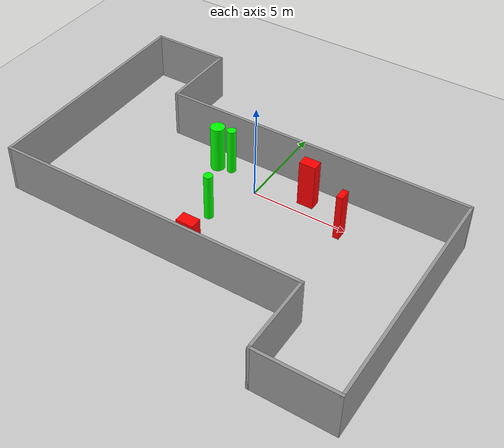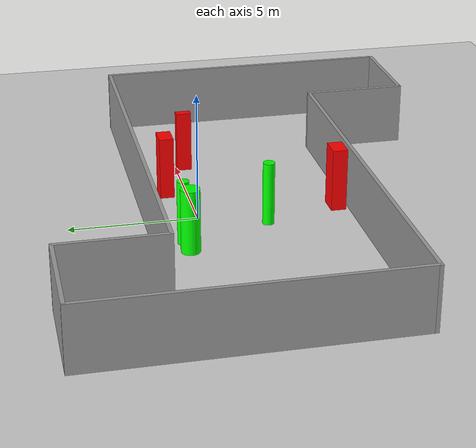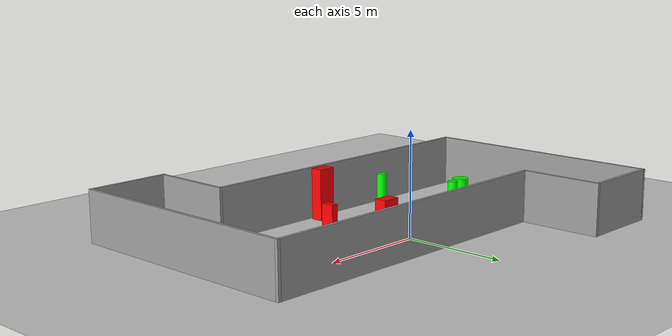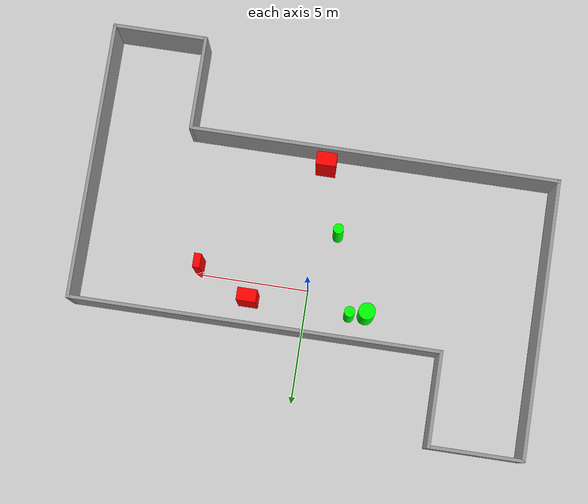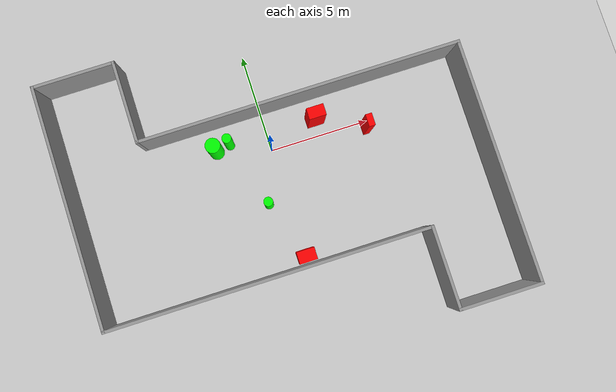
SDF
<sdf version="1.7">
 <world name="default">
  <light name="sun" type="directional">
   <pose>0 0 10 0 -0 0</pose>
   <diffuse>0.8 0.8 0.8 1</diffuse>
   <specular>0.2 0.2 0.2 1</specular>
   <attenuation>
    <range>1000</range>
    <constant>0.9</constant>
    <linear>0.01</linear>
    <quadratic>0.001</quadratic>
   </attenuation>
   <direction>-0.5 0.1 -0.9</direction>
   <spot><inner_angle>0</inner_angle><outer_angle>0</outer_angle><falloff>0</falloff></spot>
  </light>
  <model name="ground_plane">
   <static>1</static>
   <link name="link">
    <collision name="collision">
     <geometry><plane><normal>0 0 1</normal><size>100 100</size></plane></geometry>
     <surface>
      <contact><collide_bitmask>65535</collide_bitmask></contact>
      <friction><ode><mu>100</mu><mu2>50</mu2></ode></friction>
     </surface>
    </collision>
    <visual name="visual">
     <cast_shadows>0</cast_shadows>
     <geometry><plane><normal>0 0 1</normal><size>100 100</size></plane></geometry>
     <material>
      <script><uri>file://media/materials/scripts/gazebo.material</uri><name>Gazebo/Grey</name></script>
     </material>
    </visual>
   </link>
  </model>
  <gravity>0 0 -9.8</gravity>
  <magnetic_field>6e-06 2.3e-05 -4.2e-05</magnetic_field>
  <atmosphere type="adiabatic"/>
  <physics type="ode">
   <max_step_size>0.001</max_step_size>
   <real_time_factor>1</real_time_factor>
   <real_time_update_rate>1000</real_time_update_rate>
  </physics>
  <scene><ambient>0.4 0.4 0.4 1</ambient><background>0.7 0.7 0.7 1</background><shadows>1</shadows></scene>
  <spherical_coordinates>
   <surface_model>EARTH_WGS84</surface_model>
   <latitude_deg>0</latitude_deg>
   <longitude_deg>0</longitude_deg>
   <elevation>0</elevation>
   <heading_deg>0</heading_deg>
  </spherical_coordinates>
  <model name="my_base_walls">
   <link name="Wall_13">
    <collision name="Wall_13_Collision">
     <geometry><box><size>12.15 0.15 2.5</size></box></geometry>
     <pose>0 0 1.25 0 -0 0</pose>
    </collision>
    <visual name="Wall_13_Visual">
     <pose>0 0 1.25 0 -0 0</pose>
     <geometry><box><size>12.15 0.15 2.5</size></box></geometry>
     <material>
      <script><uri>file://media/materials/scripts/gazebo.material</uri><name>Gazebo/Grey</name></script>
      <ambient>1 1 1 1</ambient>
     </material>
     <meta><layer>0</layer></meta>
    </visual>
    <pose>10 -2 0 0 -0 1.5708</pose>
   </link>
   <link name="Wall_15">
    <collision name="Wall_15_Collision">
     <geometry><box><size>16.15 0.15 2.5</size></box></geometry>
     <pose>0 0 1.25 0 -0 0</pose>
    </collision>
    <visual name="Wall_15_Visual">
     <pose>0 0 1.25 0 -0 0</pose>
     <geometry><box><size>16.15 0.15 2.5</size></box></geometry>
     <material>
      <script><uri>file://media/materials/scripts/gazebo.material</uri><name>Gazebo/Grey</name></script>
      <ambient>1 1 1 1</ambient>
     </material>
     <meta><layer>0</layer></meta>
    </visual>
    <pose>2 4 0 0 -0 3.14159</pose>
   </link>
   <link name="Wall_17">
    <collision name="Wall_17_Collision">
     <geometry><box><size>4.15 0.15 2.5</size></box></geometry>
     <pose>0 0 1.25 0 -0 0</pose>
    </collision>
    <visual name="Wall_17_Visual">
     <pose>0 0 1.25 0 -0 0</pose>
     <geometry><box><size>4.15 0.15 2.5</size></box></geometry>
     <material>
      <script><uri>file://media/materials/scripts/gazebo.material</uri><name>Gazebo/Grey</name></script>
      <ambient>1 1 1 1</ambient>
     </material>
     <meta><layer>0</layer></meta>
    </visual>
    <pose>6 -6 0 0 -0 -1.5708</pose>
   </link>
   <link name="Wall_19">
    <collision name="Wall_19_Collision">
     <geometry><box><size>12.15 0.15 2.5</size></box></geometry>
     <pose>0 0 1.25 0 -0 0</pose>
    </collision>
    <visual name="Wall_19_Visual">
     <pose>0 0 1.25 0 -0 0</pose>
     <geometry><box><size>12.15 0.15 2.5</size></box></geometry>
     <material>
      <script><uri>file://media/materials/scripts/gazebo.material</uri><name>Gazebo/Grey</name></script>
      <ambient>1 1 1 1</ambient>
     </material>
     <meta><layer>0</layer></meta>
    </visual>
    <pose>-10 2 0 0 -0 1.5708</pose>
   </link>
   <link name="Wall_21">
    <collision name="Wall_21_Collision">
     <geometry><box><size>4.15 0.15 2.5</size></box></geometry>
     <pose>0 0 1.25 0 -0 0</pose>
    </collision>
    <visual name="Wall_21_Visual">
     <pose>0 0 1.25 0 -0 0</pose>
     <geometry><box><size>4.15 0.15 2.5</size></box></geometry>
     <material>
      <script><uri>file://media/materials/scripts/gazebo.material</uri><name>Gazebo/Grey</name></script>
      <ambient>1 1 1 1</ambient>
     </material>
     <meta><layer>0</layer></meta>
    </visual>
    <pose>-8 8 0 0 -0 0</pose>
   </link>
   <link name="Wall_23">
    <collision name="Wall_23_Collision">
     <geometry><box><size>4.15 0.15 2.5</size></box></geometry>
     <pose>0 0 1.25 0 -0 0</pose>
    </collision>
    <visual name="Wall_23_Visual">
     <pose>0 0 1.25 0 -0 0</pose>
     <geometry><box><size>4.15 0.15 2.5</size></box></geometry>
     <material>
      <script><uri>file://media/materials/scripts/gazebo.material</uri><name>Gazebo/Grey</name></script>
      <ambient>1 1 1 1</ambient>
     </material>
     <meta><layer>0</layer></meta>
    </visual>
    <pose>-6 6 0 0 -0 -1.5708</pose>
   </link>
   <link name="Wall_25">
    <collision name="Wall_25_Collision">
     <geometry><box><size>4.15 0.15 2.5</size></box></geometry>
     <pose>0 0 1.25 0 -0 0</pose>
    </collision>
    <visual name="Wall_25_Visual">
     <pose>0 0 1.25 0 -0 0</pose>
     <geometry><box><size>4.15 0.15 2.5</size></box></geometry>
     <material>
      <script><uri>file://media/materials/scripts/gazebo.material</uri><name>Gazebo/Grey</name></script>
      <ambient>1 1 1 1</ambient>
     </material>
     <meta><layer>0</layer></meta>
    </visual>
    <pose>8 -8 0 0 -0 0</pose>
   </link>
   <link name="Wall_9">
    <collision name="Wall_9_Collision">
     <geometry><box><size>16.15 0.15 2.5</size></box></geometry>
     <pose>0 0 1.25 0 -0 0</pose>
    </collision>
    <visual name="Wall_9_Visual">
     <pose>0 0 1.25 0 -0 0</pose>
     <geometry><box><size>16.15 0.15 2.5</size></box></geometry>
     <material>
      <script><uri>file://media/materials/scripts/gazebo.material</uri><name>Gazebo/Grey</name></script>
      <ambient>1 1 1 1</ambient>
     </material>
     <meta><layer>0</layer></meta>
    </visual>
    <pose>-2 -4 0 0 -0 3.14159</pose>
   </link>
   <static>1</static>
   <pose>-0 -2 0 0 -0 0</pose>
  </model>
  <model name="cylinder1">
   <static>1</static>
   <link name="link">
    <inertial>
     <mass>1</mass>
     <inertia><ixx>0.5</ixx><ixy>0</ixy><ixz>0</ixz><iyy>0.5</iyy><iyz>0</iyz><izz>1</izz></inertia>
    </inertial>
    <collision name="collision">
     <geometry><cylinder><radius>0.2268539536988083</radius><length>2.5</length></cylinder></geometry>
    </collision>
    <visual name="visual">
     <geometry><cylinder><radius>0.2268539536988083</radius><length>2.5</length></cylinder></geometry>
     <material>
      <ambient>0 1 0 1</ambient>
      <diffuse>0 1 0 1</diffuse>
      <specular>0.1 0.1 0.1 1</specular>
      <emissive>0 0 0 0</emissive>
     </material>
    </visual>
   </link>
   <pose>-0.9465865501894344 -2.561259339760511 1.25 0 0 0</pose>
  </model>
  <model name="cylinder2">
   <static>1</static>
   <link name="link">
    <inertial>
     <mass>1</mass>
     <inertia><ixx>0.5</ixx><ixy>0</ixy><ixz>0</ixz><iyy>0.5</iyy><iyz>0</iyz><izz>1</izz></inertia>
    </inertial>
    <collision name="collision">
     <geometry><cylinder><radius>0.3684942723243242</radius><length>2.5</length></cylinder></geometry>
    </collision>
    <visual name="visual">
     <geometry><cylinder><radius>0.3684942723243242</radius><length>2.5</length></cylinder></geometry>
     <material>
      <ambient>0 1 0 1</ambient>
      <diffuse>0 1 0 1</diffuse>
      <specular>0.1 0.1 0.1 1</specular>
      <emissive>0 0 0 0</emissive>
     </material>
    </visual>
   </link>
   <pose>-2.6541626162026644 0.7546543833058834 1.25 0 0 0</pose>
  </model>
  <model name="cylinder3">
   <static>1</static>
   <link name="link">
    <inertial>
     <mass>1</mass>
     <inertia><ixx>0.5</ixx><ixy>0</ixy><ixz>0</ixz><iyy>0.5</iyy><iyz>0</iyz><izz>1</izz></inertia>
    </inertial>
    <collision name="collision">
     <geometry><cylinder><radius>0.23203760637574994</radius><length>2.5</length></cylinder></geometry>
    </collision>
    <visual name="visual">
     <geometry><cylinder><radius>0.23203760637574994</radius><length>2.5</length></cylinder></geometry>
     <material>
      <ambient>0 1 0 1</ambient>
      <diffuse>0 1 0 1</diffuse>
      <specular>0.1 0.1 0.1 1</specular>
      <emissive>0 0 0 0</emissive>
     </material>
    </visual>
   </link>
   <pose>-1.9263059596700423 0.8868054426482841 1.25 0 0 0</pose>
  </model>
  <model name="box1">
   <static>1</static>
   <link name="link">
    <inertial>
     <mass>1</mass>
     <inertia><ixx>0.083</ixx><ixy>0</ixy><ixz>0</ixz><iyy>0.083</iyy><iyz>0</iyz><izz>0.083</izz></inertia>
    </inertial>
    <collision name="collision">
     <geometry><box><size>0.8806958146196144 0.5885820943286818 2.5</size></box></geometry>
    </collision>
    <visual name="visual">
     <geometry><box><size>0.8806958146196144 0.5885820943286818 2.5</size></box></geometry>
     <material>
      <ambient>1 0 0 1</ambient>
      <diffuse>1 0 0 1</diffuse>
      <specular>0.1 0.1 0.1 1</specular>
      <emissive>0 0 0 0</emissive>
     </material>
    </visual>
    <sensor name="my_contact" type="contact">
     <contact><collision>box_collision</collision><topic>__default_topic__</topic></contact>
    </sensor>
   </link>
   <pose>0.010025080077641135 -5.5030127381979534 1.25 0 0 0</pose>
  </model>
  <model name="box2">
   <static>1</static>
   <link name="link">
    <inertial>
     <mass>1</mass>
     <inertia><ixx>0.083</ixx><ixy>0</ixy><ixz>0</ixz><iyy>0.083</iyy><iyz>0</iyz><izz>0.083</izz></inertia>
    </inertial>
    <collision name="collision">
     <geometry><box><size>0.8467322943947968 0.5584615466727092 2.5</size></box></geometry>
    </collision>
    <visual name="visual">
     <geometry><box><size>0.8467322943947968 0.5584615466727092 2.5</size></box></geometry>
     <material>
      <ambient>1 0 0 1</ambient>
      <diffuse>1 0 0 1</diffuse>
      <specular>0.1 0.1 0.1 1</specular>
      <emissive>0 0 0 0</emissive>
     </material>
    </visual>
    <sensor name="my_contact" type="contact">
     <contact><collision>box_collision</collision><topic>__default_topic__</topic></contact>
    </sensor>
   </link>
   <pose>2.501200853520107 0.8181686809798387 1.25 0 0 0</pose>
  </model>
  <model name="box3">
   <static>1</static>
   <link name="link">
    <inertial>
     <mass>1</mass>
     <inertia><ixx>0.083</ixx><ixy>0</ixy><ixz>0</ixz><iyy>0.083</iyy><iyz>0</iyz><izz>0.083</izz></inertia>
    </inertial>
    <collision name="collision">
     <geometry><box><size>0.3109836696898188 0.6077947357413483 2.5</size></box></geometry>
    </collision>
    <visual name="visual">
     <geometry><box><size>0.3109836696898188 0.6077947357413483 2.5</size></box></geometry>
     <material>
      <ambient>1 0 0 1</ambient>
      <diffuse>1 0 0 1</diffuse>
      <specular>0.1 0.1 0.1 1</specular>
      <emissive>0 0 0 0</emissive>
     </material>
    </visual>
    <sensor name="my_contact" type="contact">
     <contact><collision>box_collision</collision><topic>__default_topic__</topic></contact>
    </sensor>
   </link>
   <pose>4.819985809784683 -0.32641999868219074 1.25 0 0 0</pose>
  </model>
 </world>
</sdf>
